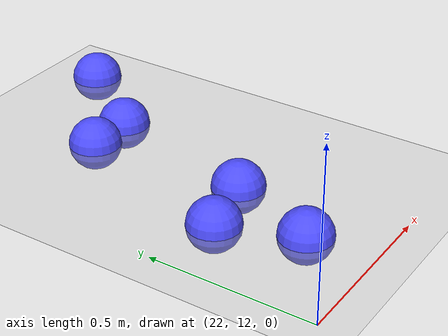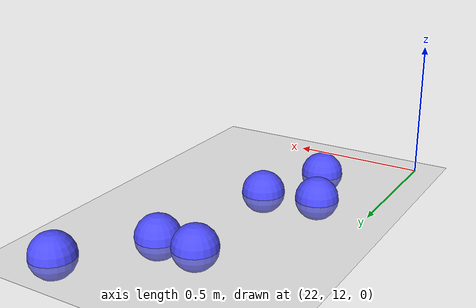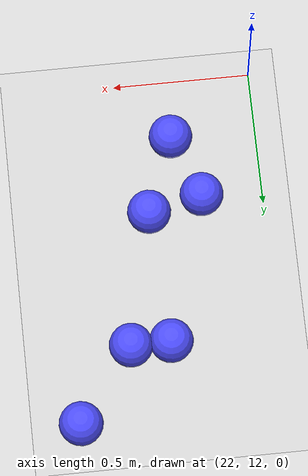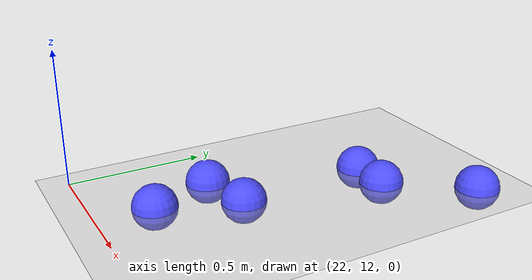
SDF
<sdf version="1.7">
 <world name="default">
  <model name="ground_plane">
   <static>1</static>
   <link name="link">
    <collision name="collision">
     <geometry><plane><normal>0 0 1</normal><size>100 100</size></plane></geometry>
     <surface>
      <contact><collide_bitmask>65535</collide_bitmask></contact>
      <friction><ode><mu>100</mu><mu2>50</mu2></ode></friction>
     </surface>
    </collision>
    <visual name="visual">
     <cast_shadows>0</cast_shadows>
     <geometry><plane><normal>0 0 1</normal><size>100 100</size></plane></geometry>
     <material>
      <script><uri>file://media/materials/scripts/gazebo.material</uri><name>Gazebo/Grey</name></script>
     </material>
    </visual>
   </link>
  </model>
  <model name="seed_blue_133">
   <link name="link">
    <inertial>
     <mass>1</mass>
     <inertia><ixx>0.1</ixx><ixy>0</ixy><ixz>0</ixz><iyy>0.1</iyy><iyz>0</iyz><izz>0.1</izz></inertia>
    </inertial>
    <visual name="visual">
     <geometry><sphere><radius>0.08</radius></sphere></geometry>
     <material>
      <script><name>Gazebo/Grey</name><uri>file://media/materials/scripts/gazebo.material</uri></script>
      <shader type="pixel"><normal_map>__default__</normal_map></shader>
      <ambient>0.3 0.3 1 1</ambient>
      <diffuse>0.7 0.7 0.7 1</diffuse>
      <specular>0.01 0.01 0.01 1</specular>
      <emissive>0 0 0 1</emissive>
     </material>
    </visual>
    <collision name="collision">
     <geometry><sphere><radius>0.0005</radius></sphere></geometry>
     <surface>
      <friction>
       <ode><mu>1</mu><mu2>1</mu2><fdir1>0 0 0</fdir1><slip1>0</slip1><slip2>0</slip2></ode>
       <torsional>
        <coefficient>1</coefficient>
        <patch_radius>0</patch_radius>
        <surface_radius>0</surface_radius>
        <use_patch_radius>1</use_patch_radius>
        <ode><slip>0</slip></ode>
       </torsional>
      </friction>
      <bounce><restitution_coefficient>0</restitution_coefficient><threshold>1e+06</threshold></bounce>
      <contact>
       <collide_without_contact>0</collide_without_contact>
       <collide_without_contact_bitmask>1</collide_without_contact_bitmask>
       <collide_bitmask>1</collide_bitmask>
       <ode>
        <soft_cfm>0</soft_cfm>
        <soft_erp>0.2</soft_erp>
        <kp>1e+13</kp>
        <kd>1</kd>
        <max_vel>0.01</max_vel>
        <min_depth>0</min_depth>
       </ode>
       <bullet>
        <split_impulse>1</split_impulse>
        <split_impulse_penetration_threshold>-0.01</split_impulse_penetration_threshold>
        <soft_cfm>0</soft_cfm>
        <soft_erp>0.2</soft_erp>
        <kp>1e+13</kp>
        <kd>1</kd>
       </bullet>
      </contact>
     </surface>
    </collision>
   </link>
   <static>0</static>
   <pose>22.7361 13.2596 0.0005 0 -0 0</pose>
  </model>
  <model name="seed_blue_134">
   <link name="link">
    <inertial>
     <mass>1</mass>
     <inertia><ixx>0.1</ixx><ixy>0</ixy><ixz>0</ixz><iyy>0.1</iyy><iyz>0</iyz><izz>0.1</izz></inertia>
    </inertial>
    <visual name="visual">
     <geometry><sphere><radius>0.08</radius></sphere></geometry>
     <material>
      <script><name>Gazebo/Grey</name><uri>file://media/materials/scripts/gazebo.material</uri></script>
      <shader type="pixel"><normal_map>__default__</normal_map></shader>
      <ambient>0.3 0.3 1 1</ambient>
      <diffuse>0.7 0.7 0.7 1</diffuse>
      <specular>0.01 0.01 0.01 1</specular>
      <emissive>0 0 0 1</emissive>
     </material>
    </visual>
    <collision name="collision">
     <geometry><sphere><radius>0.0005</radius></sphere></geometry>
     <surface>
      <friction>
       <ode><mu>1</mu><mu2>1</mu2><fdir1>0 0 0</fdir1><slip1>0</slip1><slip2>0</slip2></ode>
       <torsional>
        <coefficient>1</coefficient>
        <patch_radius>0</patch_radius>
        <surface_radius>0</surface_radius>
        <use_patch_radius>1</use_patch_radius>
        <ode><slip>0</slip></ode>
       </torsional>
      </friction>
      <bounce><restitution_coefficient>0</restitution_coefficient><threshold>1e+06</threshold></bounce>
      <contact>
       <collide_without_contact>0</collide_without_contact>
       <collide_without_contact_bitmask>1</collide_without_contact_bitmask>
       <collide_bitmask>1</collide_bitmask>
       <ode>
        <soft_cfm>0</soft_cfm>
        <soft_erp>0.2</soft_erp>
        <kp>1e+13</kp>
        <kd>1</kd>
        <max_vel>0.01</max_vel>
        <min_depth>0</min_depth>
       </ode>
       <bullet>
        <split_impulse>1</split_impulse>
        <split_impulse_penetration_threshold>-0.01</split_impulse_penetration_threshold>
        <soft_cfm>0</soft_cfm>
        <soft_erp>0.2</soft_erp>
        <kp>1e+13</kp>
        <kd>1</kd>
       </bullet>
      </contact>
     </surface>
    </collision>
   </link>
   <static>0</static>
   <pose>22.531 12.9886 0.0005 0 -0 0</pose>
  </model>
  <model name="seed_blue_135">
   <link name="link">
    <inertial>
     <mass>1</mass>
     <inertia><ixx>0.1</ixx><ixy>0</ixy><ixz>0</ixz><iyy>0.1</iyy><iyz>0</iyz><izz>0.1</izz></inertia>
    </inertial>
    <visual name="visual">
     <geometry><sphere><radius>0.08</radius></sphere></geometry>
     <material>
      <script><name>Gazebo/Grey</name><uri>file://media/materials/scripts/gazebo.material</uri></script>
      <shader type="pixel"><normal_map>__default__</normal_map></shader>
      <ambient>0.3 0.3 1 1</ambient>
      <diffuse>0.7 0.7 0.7 1</diffuse>
      <specular>0.01 0.01 0.01 1</specular>
      <emissive>0 0 0 1</emissive>
     </material>
    </visual>
    <collision name="collision">
     <geometry><sphere><radius>0.0005</radius></sphere></geometry>
     <surface>
      <friction>
       <ode><mu>1</mu><mu2>1</mu2><fdir1>0 0 0</fdir1><slip1>0</slip1><slip2>0</slip2></ode>
       <torsional>
        <coefficient>1</coefficient>
        <patch_radius>0</patch_radius>
        <surface_radius>0</surface_radius>
        <use_patch_radius>1</use_patch_radius>
        <ode><slip>0</slip></ode>
       </torsional>
      </friction>
      <bounce><restitution_coefficient>0</restitution_coefficient><threshold>1e+06</threshold></bounce>
      <contact>
       <collide_without_contact>0</collide_without_contact>
       <collide_without_contact_bitmask>1</collide_without_contact_bitmask>
       <collide_bitmask>1</collide_bitmask>
       <ode>
        <soft_cfm>0</soft_cfm>
        <soft_erp>0.2</soft_erp>
        <kp>1e+13</kp>
        <kd>1</kd>
        <max_vel>0.01</max_vel>
        <min_depth>0</min_depth>
       </ode>
       <bullet>
        <split_impulse>1</split_impulse>
        <split_impulse_penetration_threshold>-0.01</split_impulse_penetration_threshold>
        <soft_cfm>0</soft_cfm>
        <soft_erp>0.2</soft_erp>
        <kp>1e+13</kp>
        <kd>1</kd>
       </bullet>
      </contact>
     </surface>
    </collision>
   </link>
   <static>0</static>
   <pose>22.3856 12.9862 0.0005 0 -0 0</pose>
  </model>
  <model name="seed_blue_137">
   <link name="link">
    <inertial>
     <mass>1</mass>
     <inertia><ixx>0.1</ixx><ixy>0</ixy><ixz>0</ixz><iyy>0.1</iyy><iyz>0</iyz><izz>0.1</izz></inertia>
    </inertial>
    <visual name="visual">
     <geometry><sphere><radius>0.08</radius></sphere></geometry>
     <material>
      <script><name>Gazebo/Grey</name><uri>file://media/materials/scripts/gazebo.material</uri></script>
      <shader type="pixel"><normal_map>__default__</normal_map></shader>
      <ambient>0.3 0.3 1 1</ambient>
      <diffuse>0.7 0.7 0.7 1</diffuse>
      <specular>0.01 0.01 0.01 1</specular>
      <emissive>0 0 0 1</emissive>
     </material>
    </visual>
    <collision name="collision">
     <geometry><sphere><radius>0.0005</radius></sphere></geometry>
     <surface>
      <friction>
       <ode><mu>1</mu><mu2>1</mu2><fdir1>0 0 0</fdir1><slip1>0</slip1><slip2>0</slip2></ode>
       <torsional>
        <coefficient>1</coefficient>
        <patch_radius>0</patch_radius>
        <surface_radius>0</surface_radius>
        <use_patch_radius>1</use_patch_radius>
        <ode><slip>0</slip></ode>
       </torsional>
      </friction>
      <bounce><restitution_coefficient>0</restitution_coefficient><threshold>1e+06</threshold></bounce>
      <contact>
       <collide_without_contact>0</collide_without_contact>
       <collide_without_contact_bitmask>1</collide_without_contact_bitmask>
       <collide_bitmask>1</collide_bitmask>
       <ode>
        <soft_cfm>0</soft_cfm>
        <soft_erp>0.2</soft_erp>
        <kp>1e+13</kp>
        <kd>1</kd>
        <max_vel>0.01</max_vel>
        <min_depth>0</min_depth>
       </ode>
       <bullet>
        <split_impulse>1</split_impulse>
        <split_impulse_penetration_threshold>-0.01</split_impulse_penetration_threshold>
        <soft_cfm>0</soft_cfm>
        <soft_erp>0.2</soft_erp>
        <kp>1e+13</kp>
        <kd>1</kd>
       </bullet>
      </contact>
     </surface>
    </collision>
   </link>
   <static>0</static>
   <pose>22.3096 12.2098 0.0005 0 -0 0</pose>
  </model>
  <model name="seed_blue_139">
   <link name="link">
    <inertial>
     <mass>1</mass>
     <inertia><ixx>0.1</ixx><ixy>0</ixy><ixz>0</ixz><iyy>0.1</iyy><iyz>0</iyz><izz>0.1</izz></inertia>
    </inertial>
    <visual name="visual">
     <geometry><sphere><radius>0.08</radius></sphere></geometry>
     <material>
      <script><name>Gazebo/Grey</name><uri>file://media/materials/scripts/gazebo.material</uri></script>
      <shader type="pixel"><normal_map>__default__</normal_map></shader>
      <ambient>0.3 0.3 1 1</ambient>
      <diffuse>0.7 0.7 0.7 1</diffuse>
      <specular>0.01 0.01 0.01 1</specular>
      <emissive>0 0 0 1</emissive>
     </material>
    </visual>
    <collision name="collision">
     <geometry><sphere><radius>0.0005</radius></sphere></geometry>
     <surface>
      <friction>
       <ode><mu>1</mu><mu2>1</mu2><fdir1>0 0 0</fdir1><slip1>0</slip1><slip2>0</slip2></ode>
       <torsional>
        <coefficient>1</coefficient>
        <patch_radius>0</patch_radius>
        <surface_radius>0</surface_radius>
        <use_patch_radius>1</use_patch_radius>
        <ode><slip>0</slip></ode>
       </torsional>
      </friction>
      <bounce><restitution_coefficient>0</restitution_coefficient><threshold>1e+06</threshold></bounce>
      <contact>
       <collide_without_contact>0</collide_without_contact>
       <collide_without_contact_bitmask>1</collide_without_contact_bitmask>
       <collide_bitmask>1</collide_bitmask>
       <ode>
        <soft_cfm>0</soft_cfm>
        <soft_erp>0.2</soft_erp>
        <kp>1e+13</kp>
        <kd>1</kd>
        <max_vel>0.01</max_vel>
        <min_depth>0</min_depth>
       </ode>
       <bullet>
        <split_impulse>1</split_impulse>
        <split_impulse_penetration_threshold>-0.01</split_impulse_penetration_threshold>
        <soft_cfm>0</soft_cfm>
        <soft_erp>0.2</soft_erp>
        <kp>1e+13</kp>
        <kd>1</kd>
       </bullet>
      </contact>
     </surface>
    </collision>
   </link>
   <static>0</static>
   <pose>22.2196 12.4437 0.0005 0 -0 0</pose>
  </model>
  <model name="seed_blue_140">
   <link name="link">
    <inertial>
     <mass>1</mass>
     <inertia><ixx>0.1</ixx><ixy>0</ixy><ixz>0</ixz><iyy>0.1</iyy><iyz>0</iyz><izz>0.1</izz></inertia>
    </inertial>
    <visual name="visual">
     <geometry><sphere><radius>0.08</radius></sphere></geometry>
     <material>
      <script><name>Gazebo/Grey</name><uri>file://media/materials/scripts/gazebo.material</uri></script>
      <shader type="pixel"><normal_map>__default__</normal_map></shader>
      <ambient>0.3 0.3 1 1</ambient>
      <diffuse>0.7 0.7 0.7 1</diffuse>
      <specular>0.01 0.01 0.01 1</specular>
      <emissive>0 0 0 1</emissive>
     </material>
    </visual>
    <collision name="collision">
     <geometry><sphere><radius>0.0005</radius></sphere></geometry>
     <surface>
      <friction>
       <ode><mu>1</mu><mu2>1</mu2><fdir1>0 0 0</fdir1><slip1>0</slip1><slip2>0</slip2></ode>
       <torsional>
        <coefficient>1</coefficient>
        <patch_radius>0</patch_radius>
        <surface_radius>0</surface_radius>
        <use_patch_radius>1</use_patch_radius>
        <ode><slip>0</slip></ode>
       </torsional>
      </friction>
      <bounce><restitution_coefficient>0</restitution_coefficient><threshold>1e+06</threshold></bounce>
      <contact>
       <collide_without_contact>0</collide_without_contact>
       <collide_without_contact_bitmask>1</collide_without_contact_bitmask>
       <collide_bitmask>1</collide_bitmask>
       <ode>
        <soft_cfm>0</soft_cfm>
        <soft_erp>0.2</soft_erp>
        <kp>1e+13</kp>
        <kd>1</kd>
        <max_vel>0.01</max_vel>
        <min_depth>0</min_depth>
       </ode>
       <bullet>
        <split_impulse>1</split_impulse>
        <split_impulse_penetration_threshold>-0.01</split_impulse_penetration_threshold>
        <soft_cfm>0</soft_cfm>
        <soft_erp>0.2</soft_erp>
        <kp>1e+13</kp>
        <kd>1</kd>
       </bullet>
      </contact>
     </surface>
    </collision>
   </link>
   <static>0</static>
   <pose>22.4166 12.4923 0.0005 0 -0 0</pose>
  </model>
 </world>
</sdf>
